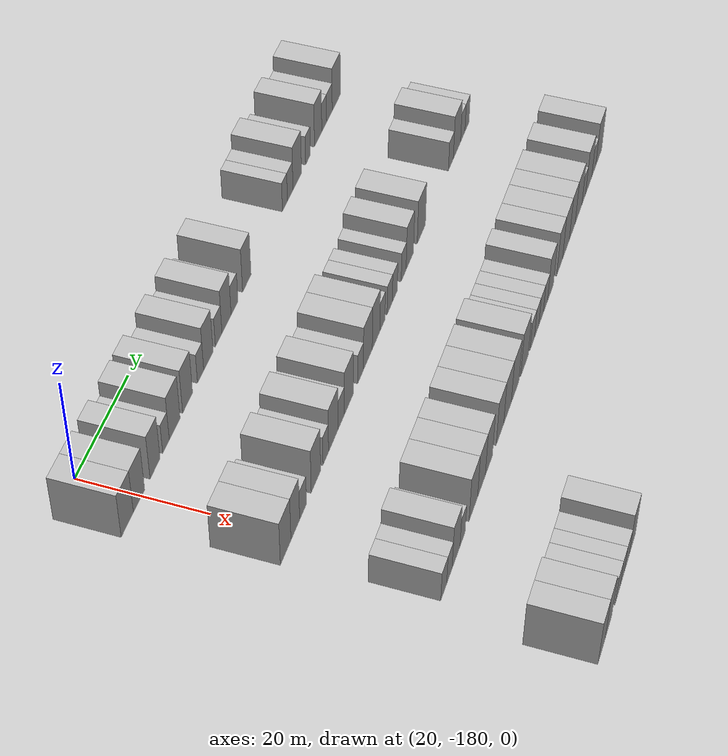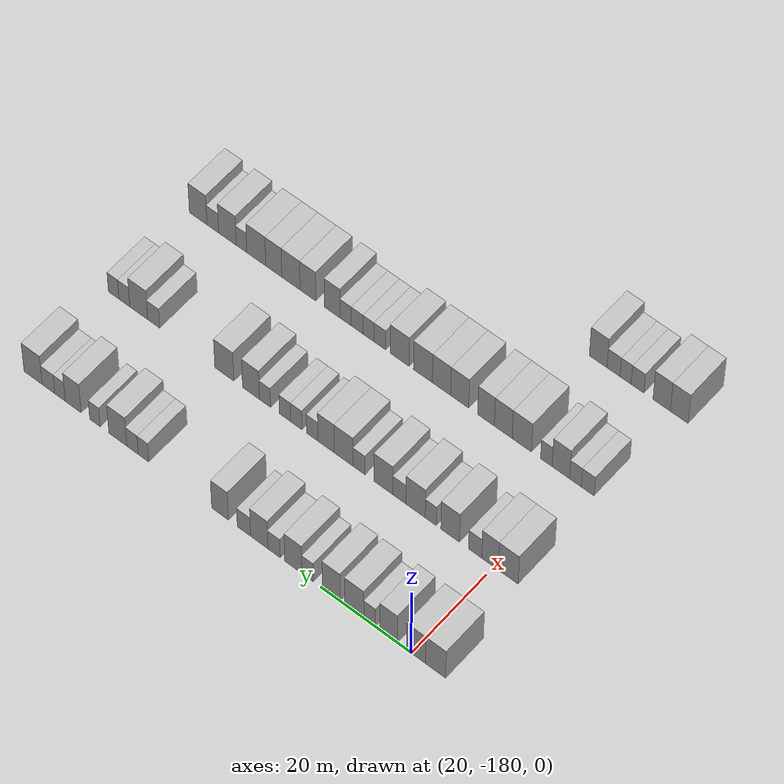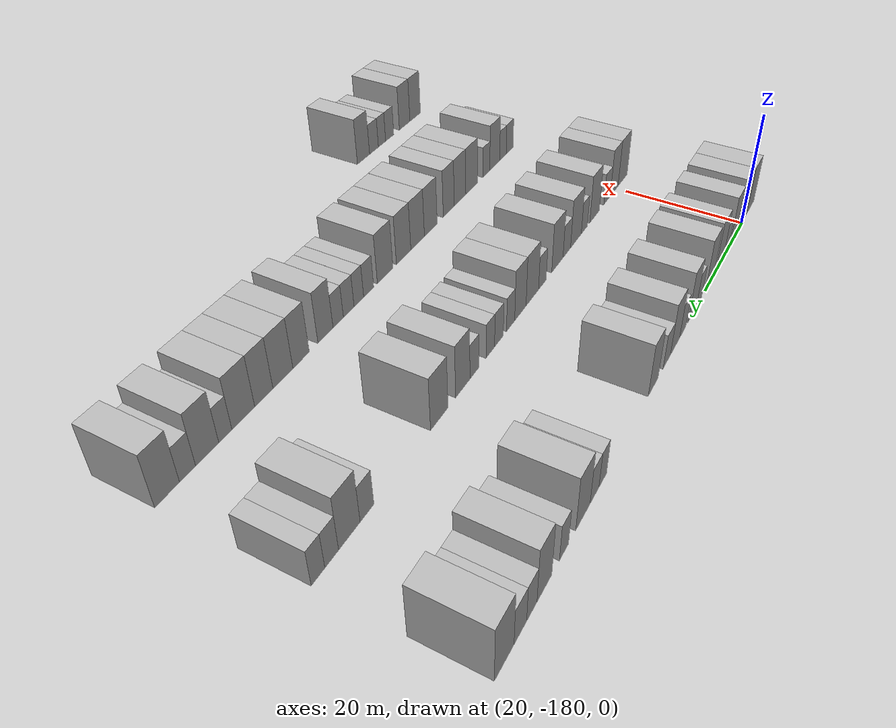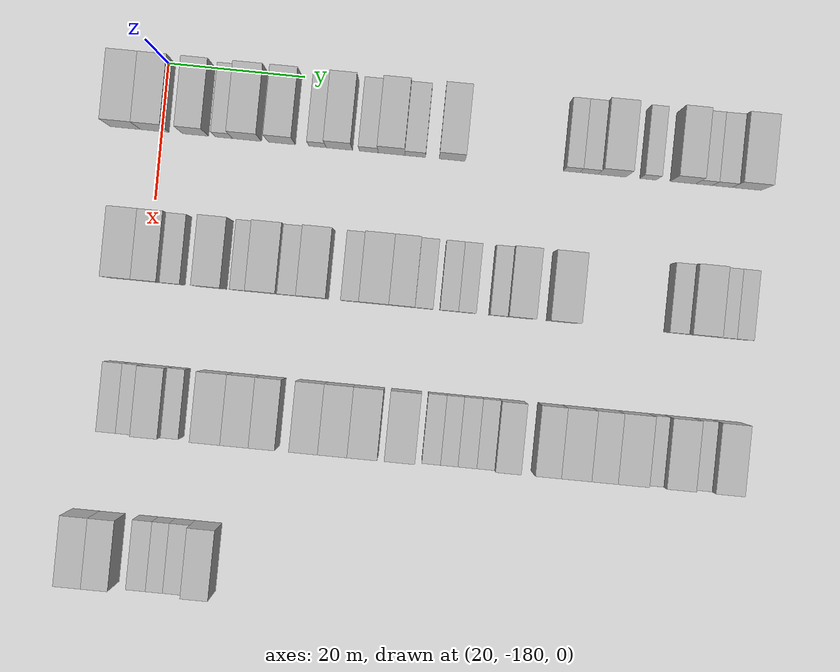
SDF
<sdf version="1.6">
 <world name="default">
  <model name="building_45">
   <static>1</static>
   <pose>25.0000 -185.2528 0 0.000000 0.000000 0.000000</pose>
   <link name="link">
    <pose>0 0 4.50 0 0 0</pose>
    <collision name="collision"><geometry><box><size>10.0000 4.4235 9.0000</size></box></geometry></collision>
    <visual name="visual">
     <cast_shadows>0</cast_shadows>
     <geometry><box><size>10.0000 4.4235 9.0000</size></box></geometry>
     <material>
      <script>
       <uri>model://HANNAS_wall/materials/scripts</uri>
       <uri>model://HANNAS_wall/materials/textures</uri>
       <name>vrc/HANNAS_wall</name>
      </script>
     </material>
    </visual>
   </link>
  </model>
  <model name="building_46">
   <static>1</static>
   <pose>25.0000 -180.9691 0 0.000000 0.000000 0.000000</pose>
   <link name="link">
    <pose>0 0 4.50 0 0 0</pose>
    <collision name="collision"><geometry><box><size>10.0000 4.1439 9.0000</size></box></geometry></collision>
    <visual name="visual">
     <cast_shadows>0</cast_shadows>
     <geometry><box><size>10.0000 4.1439 9.0000</size></box></geometry>
     <material>
      <script>
       <uri>model://HANNAS_wall/materials/scripts</uri>
       <uri>model://HANNAS_wall/materials/textures</uri>
       <name>vrc/HANNAS_wall</name>
      </script>
     </material>
    </visual>
   </link>
  </model>
  <model name="building_47">
   <static>1</static>
   <pose>25.0000 -174.9923 0 0.000000 0.000000 0.000000</pose>
   <link name="link">
    <pose>0 0 4.50 0 0 0</pose>
    <collision name="collision"><geometry><box><size>10.0000 3.8098 9.0000</size></box></geometry></collision>
    <visual name="visual">
     <cast_shadows>0</cast_shadows>
     <geometry><box><size>10.0000 3.8098 9.0000</size></box></geometry>
     <material>
      <script>
       <uri>model://HANNAS_wall/materials/scripts</uri>
       <uri>model://HANNAS_wall/materials/textures</uri>
       <name>vrc/HANNAS_wall</name>
      </script>
     </material>
    </visual>
   </link>
  </model>
  <model name="building_48">
   <static>1</static>
   <pose>25.0000 -170.8247 0 0.000000 0.000000 0.000000</pose>
   <link name="link">
    <pose>0 0 3.00 0 0 0</pose>
    <collision name="collision"><geometry><box><size>10.0000 2.5252 6.0000</size></box></geometry></collision>
    <visual name="visual">
     <cast_shadows>0</cast_shadows>
     <geometry><box><size>10.0000 2.5252 6.0000</size></box></geometry>
     <material>
      <script>
       <uri>model://HANNAS_wall/materials/scripts</uri>
       <uri>model://HANNAS_wall/materials/textures</uri>
       <name>vrc/HANNAS_wall</name>
      </script>
     </material>
    </visual>
   </link>
  </model>
  <model name="building_49">
   <static>1</static>
   <pose>25.0000 -167.4448 0 0.000000 0.000000 0.000000</pose>
   <link name="link">
    <pose>0 0 4.50 0 0 0</pose>
    <collision name="collision"><geometry><box><size>10.0000 4.2347 9.0000</size></box></geometry></collision>
    <visual name="visual">
     <cast_shadows>0</cast_shadows>
     <geometry><box><size>10.0000 4.2347 9.0000</size></box></geometry>
     <material>
      <script>
       <uri>model://HANNAS_wall/materials/scripts</uri>
       <uri>model://HANNAS_wall/materials/textures</uri>
       <name>vrc/HANNAS_wall</name>
      </script>
     </material>
    </visual>
   </link>
  </model>
  <model name="building_50">
   <static>1</static>
   <pose>25.0000 -162.3465 0 0.000000 0.000000 0.000000</pose>
   <link name="link">
    <pose>0 0 4.50 0 0 0</pose>
    <collision name="collision"><geometry><box><size>10.0000 3.9619 9.0000</size></box></geometry></collision>
    <visual name="visual">
     <cast_shadows>0</cast_shadows>
     <geometry><box><size>10.0000 3.9619 9.0000</size></box></geometry>
     <material>
      <script>
       <uri>model://HANNAS_wall/materials/scripts</uri>
       <uri>model://HANNAS_wall/materials/textures</uri>
       <name>vrc/HANNAS_wall</name>
      </script>
     </material>
    </visual>
   </link>
  </model>
  <model name="building_51">
   <static>1</static>
   <pose>25.0000 -157.0971 0 0.000000 0.000000 0.000000</pose>
   <link name="link">
    <pose>0 0 3.00 0 0 0</pose>
    <collision name="collision"><geometry><box><size>10.0000 2.5369 6.0000</size></box></geometry></collision>
    <visual name="visual">
     <cast_shadows>0</cast_shadows>
     <geometry><box><size>10.0000 2.5369 6.0000</size></box></geometry>
     <material>
      <script>
       <uri>model://HANNAS_wall/materials/scripts</uri>
       <uri>model://HANNAS_wall/materials/textures</uri>
       <name>vrc/HANNAS_wall</name>
      </script>
     </material>
    </visual>
   </link>
  </model>
  <model name="building_52">
   <static>1</static>
   <pose>25.0000 -153.9023 0 0.000000 0.000000 0.000000</pose>
   <link name="link">
    <pose>0 0 4.50 0 0 0</pose>
    <collision name="collision"><geometry><box><size>10.0000 3.8527 9.0000</size></box></geometry></collision>
    <visual name="visual">
     <cast_shadows>0</cast_shadows>
     <geometry><box><size>10.0000 3.8527 9.0000</size></box></geometry>
     <material>
      <script>
       <uri>model://HANNAS_wall/materials/scripts</uri>
       <uri>model://HANNAS_wall/materials/textures</uri>
       <name>vrc/HANNAS_wall</name>
      </script>
     </material>
    </visual>
   </link>
  </model>
  <model name="building_53">
   <static>1</static>
   <pose>25.0000 -149.5930 0 0.000000 0.000000 0.000000</pose>
   <link name="link">
    <pose>0 0 3.00 0 0 0</pose>
    <collision name="collision"><geometry><box><size>10.0000 2.7660 6.0000</size></box></geometry></collision>
    <visual name="visual">
     <cast_shadows>0</cast_shadows>
     <geometry><box><size>10.0000 2.7660 6.0000</size></box></geometry>
     <material>
      <script>
       <uri>model://HANNAS_wall/materials/scripts</uri>
       <uri>model://HANNAS_wall/materials/textures</uri>
       <name>vrc/HANNAS_wall</name>
      </script>
     </material>
    </visual>
   </link>
  </model>
  <model name="building_54">
   <static>1</static>
   <pose>25.0000 -146.2458 0 0.000000 0.000000 0.000000</pose>
   <link name="link">
    <pose>0 0 4.50 0 0 0</pose>
    <collision name="collision"><geometry><box><size>10.0000 3.9282 9.0000</size></box></geometry></collision>
    <visual name="visual">
     <cast_shadows>0</cast_shadows>
     <geometry><box><size>10.0000 3.9282 9.0000</size></box></geometry>
     <material>
      <script>
       <uri>model://HANNAS_wall/materials/scripts</uri>
       <uri>model://HANNAS_wall/materials/textures</uri>
       <name>vrc/HANNAS_wall</name>
      </script>
     </material>
    </visual>
   </link>
  </model>
  <model name="building_55">
   <static>1</static>
   <pose>25.0000 -142.7853 0 0.000000 0.000000 0.000000</pose>
   <link name="link">
    <pose>0 0 3.00 0 0 0</pose>
    <collision name="collision"><geometry><box><size>10.0000 2.9929 6.0000</size></box></geometry></collision>
    <visual name="visual">
     <cast_shadows>0</cast_shadows>
     <geometry><box><size>10.0000 2.9929 6.0000</size></box></geometry>
     <material>
      <script>
       <uri>model://HANNAS_wall/materials/scripts</uri>
       <uri>model://HANNAS_wall/materials/textures</uri>
       <name>vrc/HANNAS_wall</name>
      </script>
     </material>
    </visual>
   </link>
  </model>
  <model name="building_56">
   <static>1</static>
   <pose>25.0000 -137.4018 0 0.000000 0.000000 0.000000</pose>
   <link name="link">
    <pose>0 0 4.50 0 0 0</pose>
    <collision name="collision"><geometry><box><size>10.0000 3.7742 9.0000</size></box></geometry></collision>
    <visual name="visual">
     <cast_shadows>0</cast_shadows>
     <geometry><box><size>10.0000 3.7742 9.0000</size></box></geometry>
     <material>
      <script>
       <uri>model://HANNAS_wall/materials/scripts</uri>
       <uri>model://HANNAS_wall/materials/textures</uri>
       <name>vrc/HANNAS_wall</name>
      </script>
     </material>
    </visual>
   </link>
  </model>
  <model name="building_57">
   <static>1</static>
   <pose>25.0000 -119.8954 0 0.000000 0.000000 0.000000</pose>
   <link name="link">
    <pose>0 0 3.00 0 0 0</pose>
    <collision name="collision"><geometry><box><size>10.0000 2.4129 6.0000</size></box></geometry></collision>
    <visual name="visual">
     <cast_shadows>0</cast_shadows>
     <geometry><box><size>10.0000 2.4129 6.0000</size></box></geometry>
     <material>
      <script>
       <uri>model://HANNAS_wall/materials/scripts</uri>
       <uri>model://HANNAS_wall/materials/textures</uri>
       <name>vrc/HANNAS_wall</name>
      </script>
     </material>
    </visual>
   </link>
  </model>
  <model name="building_58">
   <static>1</static>
   <pose>25.0000 -117.3550 0 0.000000 0.000000 0.000000</pose>
   <link name="link">
    <pose>0 0 3.00 0 0 0</pose>
    <collision name="collision"><geometry><box><size>10.0000 2.6679 6.0000</size></box></geometry></collision>
    <visual name="visual">
     <cast_shadows>0</cast_shadows>
     <geometry><box><size>10.0000 2.6679 6.0000</size></box></geometry>
     <material>
      <script>
       <uri>model://HANNAS_wall/materials/scripts</uri>
       <uri>model://HANNAS_wall/materials/textures</uri>
       <name>vrc/HANNAS_wall</name>
      </script>
     </material>
    </visual>
   </link>
  </model>
  <model name="building_59">
   <static>1</static>
   <pose>25.0000 -113.9517 0 0.000000 0.000000 0.000000</pose>
   <link name="link">
    <pose>0 0 4.50 0 0 0</pose>
    <collision name="collision"><geometry><box><size>10.0000 4.1386 9.0000</size></box></geometry></collision>
    <visual name="visual">
     <cast_shadows>0</cast_shadows>
     <geometry><box><size>10.0000 4.1386 9.0000</size></box></geometry>
     <material>
      <script>
       <uri>model://HANNAS_wall/materials/scripts</uri>
       <uri>model://HANNAS_wall/materials/textures</uri>
       <name>vrc/HANNAS_wall</name>
      </script>
     </material>
    </visual>
   </link>
  </model>
  <model name="building_60">
   <static>1</static>
   <pose>25.0000 -108.6662 0 0.000000 0.000000 0.000000</pose>
   <link name="link">
    <pose>0 0 3.00 0 0 0</pose>
    <collision name="collision"><geometry><box><size>10.0000 2.4325 6.0000</size></box></geometry></collision>
    <visual name="visual">
     <cast_shadows>0</cast_shadows>
     <geometry><box><size>10.0000 2.4325 6.0000</size></box></geometry>
     <material>
      <script>
       <uri>model://HANNAS_wall/materials/scripts</uri>
       <uri>model://HANNAS_wall/materials/textures</uri>
       <name>vrc/HANNAS_wall</name>
      </script>
     </material>
    </visual>
   </link>
  </model>
  <model name="building_61">
   <static>1</static>
   <pose>25.0000 -103.5919 0 0.000000 0.000000 0.000000</pose>
   <link name="link">
    <pose>0 0 4.50 0 0 0</pose>
    <collision name="collision"><geometry><box><size>10.0000 3.7161 9.0000</size></box></geometry></collision>
    <visual name="visual">
     <cast_shadows>0</cast_shadows>
     <geometry><box><size>10.0000 3.7161 9.0000</size></box></geometry>
     <material>
      <script>
       <uri>model://HANNAS_wall/materials/scripts</uri>
       <uri>model://HANNAS_wall/materials/textures</uri>
       <name>vrc/HANNAS_wall</name>
      </script>
     </material>
    </visual>
   </link>
  </model>
  <model name="building_62">
   <static>1</static>
   <pose>25.0000 -100.4993 0 0.000000 0.000000 0.000000</pose>
   <link name="link">
    <pose>0 0 3.00 0 0 0</pose>
    <collision name="collision"><geometry><box><size>10.0000 2.4692 6.0000</size></box></geometry></collision>
    <visual name="visual">
     <cast_shadows>0</cast_shadows>
     <geometry><box><size>10.0000 2.4692 6.0000</size></box></geometry>
     <material>
      <script>
       <uri>model://HANNAS_wall/materials/scripts</uri>
       <uri>model://HANNAS_wall/materials/textures</uri>
       <name>vrc/HANNAS_wall</name>
      </script>
     </material>
    </visual>
   </link>
  </model>
  <model name="building_63">
   <static>1</static>
   <pose>25.0000 -97.8105 0 0.000000 0.000000 0.000000</pose>
   <link name="link">
    <pose>0 0 3.00 0 0 0</pose>
    <collision name="collision"><geometry><box><size>10.0000 2.9084 6.0000</size></box></geometry></collision>
    <visual name="visual">
     <cast_shadows>0</cast_shadows>
     <geometry><box><size>10.0000 2.9084 6.0000</size></box></geometry>
     <material>
      <script>
       <uri>model://HANNAS_wall/materials/scripts</uri>
       <uri>model://HANNAS_wall/materials/textures</uri>
       <name>vrc/HANNAS_wall</name>
      </script>
     </material>
    </visual>
   </link>
  </model>
  <model name="building_64">
   <static>1</static>
   <pose>25.0000 -94.2156 0 0.000000 0.000000 0.000000</pose>
   <link name="link">
    <pose>0 0 4.50 0 0 0</pose>
    <collision name="collision"><geometry><box><size>10.0000 4.2814 9.0000</size></box></geometry></collision>
    <visual name="visual">
     <cast_shadows>0</cast_shadows>
     <geometry><box><size>10.0000 4.2814 9.0000</size></box></geometry>
     <material>
      <script>
       <uri>model://HANNAS_wall/materials/scripts</uri>
       <uri>model://HANNAS_wall/materials/textures</uri>
       <name>vrc/HANNAS_wall</name>
      </script>
     </material>
    </visual>
   </link>
  </model>
  <model name="building_230">
   <static>1</static>
   <pose>47.0000 -183.0756 0 0.000000 0.000000 0.000000</pose>
   <link name="link">
    <pose>0 0 4.50 0 0 0</pose>
    <collision name="collision"><geometry><box><size>10.0000 4.3455 9.0000</size></box></geometry></collision>
    <visual name="visual">
     <cast_shadows>0</cast_shadows>
     <geometry><box><size>10.0000 4.3455 9.0000</size></box></geometry>
     <material>
      <script>
       <uri>model://HANNAS_wall/materials/scripts</uri>
       <uri>model://HANNAS_wall/materials/textures</uri>
       <name>vrc/HANNAS_wall</name>
      </script>
     </material>
    </visual>
   </link>
  </model>
  <model name="building_231">
   <static>1</static>
   <pose>47.0000 -179.0838 0 0.000000 0.000000 0.000000</pose>
   <link name="link">
    <pose>0 0 4.50 0 0 0</pose>
    <collision name="collision"><geometry><box><size>10.0000 3.6381 9.0000</size></box></geometry></collision>
    <visual name="visual">
     <cast_shadows>0</cast_shadows>
     <geometry><box><size>10.0000 3.6381 9.0000</size></box></geometry>
     <material>
      <script>
       <uri>model://HANNAS_wall/materials/scripts</uri>
       <uri>model://HANNAS_wall/materials/textures</uri>
       <name>vrc/HANNAS_wall</name>
      </script>
     </material>
    </visual>
   </link>
  </model>
  <model name="building_232">
   <static>1</static>
   <pose>47.0000 -175.8209 0 0.000000 0.000000 0.000000</pose>
   <link name="link">
    <pose>0 0 3.00 0 0 0</pose>
    <collision name="collision"><geometry><box><size>10.0000 2.8879 6.0000</size></box></geometry></collision>
    <visual name="visual">
     <cast_shadows>0</cast_shadows>
     <geometry><box><size>10.0000 2.8879 6.0000</size></box></geometry>
     <material>
      <script>
       <uri>model://HANNAS_wall/materials/scripts</uri>
       <uri>model://HANNAS_wall/materials/textures</uri>
       <name>vrc/HANNAS_wall</name>
      </script>
     </material>
    </visual>
   </link>
  </model>
  <model name="building_233">
   <static>1</static>
   <pose>47.0000 -170.3170 0 0.000000 0.000000 0.000000</pose>
   <link name="link">
    <pose>0 0 4.50 0 0 0</pose>
    <collision name="collision"><geometry><box><size>10.0000 4.1198 9.0000</size></box></geometry></collision>
    <visual name="visual">
     <cast_shadows>0</cast_shadows>
     <geometry><box><size>10.0000 4.1198 9.0000</size></box></geometry>
     <material>
      <script>
       <uri>model://HANNAS_wall/materials/scripts</uri>
       <uri>model://HANNAS_wall/materials/textures</uri>
       <name>vrc/HANNAS_wall</name>
      </script>
     </material>
    </visual>
   </link>
  </model>
  <model name="building_234">
   <static>1</static>
   <pose>47.0000 -166.0101 0 0.000000 0.000000 0.000000</pose>
   <link name="link">
    <pose>0 0 3.00 0 0 0</pose>
    <collision name="collision"><geometry><box><size>10.0000 2.4941 6.0000</size></box></geometry></collision>
    <visual name="visual">
     <cast_shadows>0</cast_shadows>
     <geometry><box><size>10.0000 2.4941 6.0000</size></box></geometry>
     <material>
      <script>
       <uri>model://HANNAS_wall/materials/scripts</uri>
       <uri>model://HANNAS_wall/materials/textures</uri>
       <name>vrc/HANNAS_wall</name>
      </script>
     </material>
    </visual>
   </link>
  </model>
  <model name="building_235">
   <static>1</static>
   <pose>47.0000 -162.6153 0 0.000000 0.000000 0.000000</pose>
   <link name="link">
    <pose>0 0 4.50 0 0 0</pose>
    <collision name="collision"><geometry><box><size>10.0000 4.2955 9.0000</size></box></geometry></collision>
    <visual name="visual">
     <cast_shadows>0</cast_shadows>
     <geometry><box><size>10.0000 4.2955 9.0000</size></box></geometry>
     <material>
      <script>
       <uri>model://HANNAS_wall/materials/scripts</uri>
       <uri>model://HANNAS_wall/materials/textures</uri>
       <name>vrc/HANNAS_wall</name>
      </script>
     </material>
    </visual>
   </link>
  </model>
  <model name="building_236">
   <static>1</static>
   <pose>47.0000 -159.0117 0 0.000000 0.000000 0.000000</pose>
   <link name="link">
    <pose>0 0 3.00 0 0 0</pose>
    <collision name="collision"><geometry><box><size>10.0000 2.9117 6.0000</size></box></geometry></collision>
    <visual name="visual">
     <cast_shadows>0</cast_shadows>
     <geometry><box><size>10.0000 2.9117 6.0000</size></box></geometry>
     <material>
      <script>
       <uri>model://HANNAS_wall/materials/scripts</uri>
       <uri>model://HANNAS_wall/materials/textures</uri>
       <name>vrc/HANNAS_wall</name>
      </script>
     </material>
    </visual>
   </link>
  </model>
  <model name="building_237">
   <static>1</static>
   <pose>47.0000 -155.4536 0 0.000000 0.000000 0.000000</pose>
   <link name="link">
    <pose>0 0 4.50 0 0 0</pose>
    <collision name="collision"><geometry><box><size>10.0000 4.2043 9.0000</size></box></geometry></collision>
    <visual name="visual">
     <cast_shadows>0</cast_shadows>
     <geometry><box><size>10.0000 4.2043 9.0000</size></box></geometry>
     <material>
      <script>
       <uri>model://HANNAS_wall/materials/scripts</uri>
       <uri>model://HANNAS_wall/materials/textures</uri>
       <name>vrc/HANNAS_wall</name>
      </script>
     </material>
    </visual>
   </link>
  </model>
  <model name="building_238">
   <static>1</static>
   <pose>47.0000 -150.0059 0 0.000000 0.000000 0.000000</pose>
   <link name="link">
    <pose>0 0 3.00 0 0 0</pose>
    <collision name="collision"><geometry><box><size>10.0000 2.6910 6.0000</size></box></geometry></collision>
    <visual name="visual">
     <cast_shadows>0</cast_shadows>
     <geometry><box><size>10.0000 2.6910 6.0000</size></box></geometry>
     <material>
      <script>
       <uri>model://HANNAS_wall/materials/scripts</uri>
       <uri>model://HANNAS_wall/materials/textures</uri>
       <name>vrc/HANNAS_wall</name>
      </script>
     </material>
    </visual>
   </link>
  </model>
  <model name="building_239">
   <static>1</static>
   <pose>47.0000 -146.5293 0 0.000000 0.000000 0.000000</pose>
   <link name="link">
    <pose>0 0 4.50 0 0 0</pose>
    <collision name="collision"><geometry><box><size>10.0000 4.2623 9.0000</size></box></geometry></collision>
    <visual name="visual">
     <cast_shadows>0</cast_shadows>
     <geometry><box><size>10.0000 4.2623 9.0000</size></box></geometry>
     <material>
      <script>
       <uri>model://HANNAS_wall/materials/scripts</uri>
       <uri>model://HANNAS_wall/materials/textures</uri>
       <name>vrc/HANNAS_wall</name>
      </script>
     </material>
    </visual>
   </link>
  </model>
  <model name="building_240">
   <static>1</static>
   <pose>47.0000 -142.5368 0 0.000000 0.000000 0.000000</pose>
   <link name="link">
    <pose>0 0 4.50 0 0 0</pose>
    <collision name="collision"><geometry><box><size>10.0000 3.7227 9.0000</size></box></geometry></collision>
    <visual name="visual">
     <cast_shadows>0</cast_shadows>
     <geometry><box><size>10.0000 3.7227 9.0000</size></box></geometry>
     <material>
      <script>
       <uri>model://HANNAS_wall/materials/scripts</uri>
       <uri>model://HANNAS_wall/materials/textures</uri>
       <name>vrc/HANNAS_wall</name>
      </script>
     </material>
    </visual>
   </link>
  </model>
  <model name="building_241">
   <static>1</static>
   <pose>47.0000 -139.3839 0 0.000000 0.000000 0.000000</pose>
   <link name="link">
    <pose>0 0 3.00 0 0 0</pose>
    <collision name="collision"><geometry><box><size>10.0000 2.5831 6.0000</size></box></geometry></collision>
    <visual name="visual">
     <cast_shadows>0</cast_shadows>
     <geometry><box><size>10.0000 2.5831 6.0000</size></box></geometry>
     <material>
      <script>
       <uri>model://HANNAS_wall/materials/scripts</uri>
       <uri>model://HANNAS_wall/materials/textures</uri>
       <name>vrc/HANNAS_wall</name>
      </script>
     </material>
    </visual>
   </link>
  </model>
  <model name="building_242">
   <static>1</static>
   <pose>47.0000 -135.7715 0 0.000000 0.000000 0.000000</pose>
   <link name="link">
    <pose>0 0 3.00 0 0 0</pose>
    <collision name="collision"><geometry><box><size>10.0000 2.6417 6.0000</size></box></geometry></collision>
    <visual name="visual">
     <cast_shadows>0</cast_shadows>
     <geometry><box><size>10.0000 2.6417 6.0000</size></box></geometry>
     <material>
      <script>
       <uri>model://HANNAS_wall/materials/scripts</uri>
       <uri>model://HANNAS_wall/materials/textures</uri>
       <name>vrc/HANNAS_wall</name>
      </script>
     </material>
    </visual>
   </link>
  </model>
  <model name="building_243">
   <static>1</static>
   <pose>47.0000 -133.1820 0 0.000000 0.000000 0.000000</pose>
   <link name="link">
    <pose>0 0 3.00 0 0 0</pose>
    <collision name="collision"><geometry><box><size>10.0000 2.5373 6.0000</size></box></geometry></collision>
    <visual name="visual">
     <cast_shadows>0</cast_shadows>
     <geometry><box><size>10.0000 2.5373 6.0000</size></box></geometry>
     <material>
      <script>
       <uri>model://HANNAS_wall/materials/scripts</uri>
       <uri>model://HANNAS_wall/materials/textures</uri>
       <name>vrc/HANNAS_wall</name>
      </script>
     </material>
    </visual>
   </link>
  </model>
  <model name="building_244">
   <static>1</static>
   <pose>47.0000 -128.6368 0 0.000000 0.000000 0.000000</pose>
   <link name="link">
    <pose>0 0 3.00 0 0 0</pose>
    <collision name="collision"><geometry><box><size>10.0000 2.5530 6.0000</size></box></geometry></collision>
    <visual name="visual">
     <cast_shadows>0</cast_shadows>
     <geometry><box><size>10.0000 2.5530 6.0000</size></box></geometry>
     <material>
      <script>
       <uri>model://HANNAS_wall/materials/scripts</uri>
       <uri>model://HANNAS_wall/materials/textures</uri>
       <name>vrc/HANNAS_wall</name>
      </script>
     </material>
    </visual>
   </link>
  </model>
  <model name="building_245">
   <static>1</static>
   <pose>47.0000 -125.4148 0 0.000000 0.000000 0.000000</pose>
   <link name="link">
    <pose>0 0 4.50 0 0 0</pose>
    <collision name="collision"><geometry><box><size>10.0000 3.8911 9.0000</size></box></geometry></collision>
    <visual name="visual">
     <cast_shadows>0</cast_shadows>
     <geometry><box><size>10.0000 3.8911 9.0000</size></box></geometry>
     <material>
      <script>
       <uri>model://HANNAS_wall/materials/scripts</uri>
       <uri>model://HANNAS_wall/materials/textures</uri>
       <name>vrc/HANNAS_wall</name>
      </script>
     </material>
    </visual>
   </link>
  </model>
  <model name="building_246">
   <static>1</static>
   <pose>47.0000 -119.2658 0 0.000000 0.000000 0.000000</pose>
   <link name="link">
    <pose>0 0 4.50 0 0 0</pose>
    <collision name="collision"><geometry><box><size>10.0000 4.4068 9.0000</size></box></geometry></collision>
    <visual name="visual">
     <cast_shadows>0</cast_shadows>
     <geometry><box><size>10.0000 4.4068 9.0000</size></box></geometry>
     <material>
      <script>
       <uri>model://HANNAS_wall/materials/scripts</uri>
       <uri>model://HANNAS_wall/materials/textures</uri>
       <name>vrc/HANNAS_wall</name>
      </script>
     </material>
    </visual>
   </link>
  </model>
  <model name="building_247">
   <static>1</static>
   <pose>47.0000 -102.8188 0 0.000000 0.000000 0.000000</pose>
   <link name="link">
    <pose>0 0 3.00 0 0 0</pose>
    <collision name="collision"><geometry><box><size>10.0000 2.8291 6.0000</size></box></geometry></collision>
    <visual name="visual">
     <cast_shadows>0</cast_shadows>
     <geometry><box><size>10.0000 2.8291 6.0000</size></box></geometry>
     <material>
      <script>
       <uri>model://HANNAS_wall/materials/scripts</uri>
       <uri>model://HANNAS_wall/materials/textures</uri>
       <name>vrc/HANNAS_wall</name>
      </script>
     </material>
    </visual>
   </link>
  </model>
  <model name="building_248">
   <static>1</static>
   <pose>47.0000 -99.2998 0 0.000000 0.000000 0.000000</pose>
   <link name="link">
    <pose>0 0 4.50 0 0 0</pose>
    <collision name="collision"><geometry><box><size>10.0000 4.2090 9.0000</size></box></geometry></collision>
    <visual name="visual">
     <cast_shadows>0</cast_shadows>
     <geometry><box><size>10.0000 4.2090 9.0000</size></box></geometry>
     <material>
      <script>
       <uri>model://HANNAS_wall/materials/scripts</uri>
       <uri>model://HANNAS_wall/materials/textures</uri>
       <name>vrc/HANNAS_wall</name>
      </script>
     </material>
    </visual>
   </link>
  </model>
  <model name="building_249">
   <static>1</static>
   <pose>47.0000 -95.9122 0 0.000000 0.000000 0.000000</pose>
   <link name="link">
    <pose>0 0 3.00 0 0 0</pose>
    <collision name="collision"><geometry><box><size>10.0000 2.5662 6.0000</size></box></geometry></collision>
    <visual name="visual">
     <cast_shadows>0</cast_shadows>
     <geometry><box><size>10.0000 2.5662 6.0000</size></box></geometry>
     <material>
      <script>
       <uri>model://HANNAS_wall/materials/scripts</uri>
       <uri>model://HANNAS_wall/materials/textures</uri>
       <name>vrc/HANNAS_wall</name>
      </script>
     </material>
    </visual>
   </link>
  </model>
  <model name="building_250">
   <static>1</static>
   <pose>47.0000 -93.3947 0 0.000000 0.000000 0.000000</pose>
   <link name="link">
    <pose>0 0 3.00 0 0 0</pose>
    <collision name="collision"><geometry><box><size>10.0000 2.4687 6.0000</size></box></geometry></collision>
    <visual name="visual">
     <cast_shadows>0</cast_shadows>
     <geometry><box><size>10.0000 2.4687 6.0000</size></box></geometry>
     <material>
      <script>
       <uri>model://HANNAS_wall/materials/scripts</uri>
       <uri>model://HANNAS_wall/materials/textures</uri>
       <name>vrc/HANNAS_wall</name>
      </script>
     </material>
    </visual>
   </link>
  </model>
  <model name="building_416">
   <static>1</static>
   <pose>69.0000 -182.7843 0 0.000000 0.000000 0.000000</pose>
   <link name="link">
    <pose>0 0 3.00 0 0 0</pose>
    <collision name="collision"><geometry><box><size>10.0000 2.8218 6.0000</size></box></geometry></collision>
    <visual name="visual">
     <cast_shadows>0</cast_shadows>
     <geometry><box><size>10.0000 2.8218 6.0000</size></box></geometry>
     <material>
      <script>
       <uri>model://HANNAS_wall/materials/scripts</uri>
       <uri>model://HANNAS_wall/materials/textures</uri>
       <name>vrc/HANNAS_wall</name>
      </script>
     </material>
    </visual>
   </link>
  </model>
  <model name="building_417">
   <static>1</static>
   <pose>69.0000 -180.0860 0 0.000000 0.000000 0.000000</pose>
   <link name="link">
    <pose>0 0 3.00 0 0 0</pose>
    <collision name="collision"><geometry><box><size>10.0000 2.5749 6.0000</size></box></geometry></collision>
    <visual name="visual">
     <cast_shadows>0</cast_shadows>
     <geometry><box><size>10.0000 2.5749 6.0000</size></box></geometry>
     <material>
      <script>
       <uri>model://HANNAS_wall/materials/scripts</uri>
       <uri>model://HANNAS_wall/materials/textures</uri>
       <name>vrc/HANNAS_wall</name>
      </script>
     </material>
    </visual>
   </link>
  </model>
  <model name="building_418">
   <static>1</static>
   <pose>69.0000 -176.8755 0 0.000000 0.000000 0.000000</pose>
   <link name="link">
    <pose>0 0 4.50 0 0 0</pose>
    <collision name="collision"><geometry><box><size>10.0000 3.8462 9.0000</size></box></geometry></collision>
    <visual name="visual">
     <cast_shadows>0</cast_shadows>
     <geometry><box><size>10.0000 3.8462 9.0000</size></box></geometry>
     <material>
      <script>
       <uri>model://HANNAS_wall/materials/scripts</uri>
       <uri>model://HANNAS_wall/materials/textures</uri>
       <name>vrc/HANNAS_wall</name>
      </script>
     </material>
    </visual>
   </link>
  </model>
  <model name="building_419">
   <static>1</static>
   <pose>69.0000 -173.6781 0 0.000000 0.000000 0.000000</pose>
   <link name="link">
    <pose>0 0 3.00 0 0 0</pose>
    <collision name="collision"><geometry><box><size>10.0000 2.5486 6.0000</size></box></geometry></collision>
    <visual name="visual">
     <cast_shadows>0</cast_shadows>
     <geometry><box><size>10.0000 2.5486 6.0000</size></box></geometry>
     <material>
      <script>
       <uri>model://HANNAS_wall/materials/scripts</uri>
       <uri>model://HANNAS_wall/materials/textures</uri>
       <name>vrc/HANNAS_wall</name>
      </script>
     </material>
    </visual>
   </link>
  </model>
  <model name="building_420">
   <static>1</static>
   <pose>69.0000 -168.2470 0 0.000000 0.000000 0.000000</pose>
   <link name="link">
    <pose>0 0 4.50 0 0 0</pose>
    <collision name="collision"><geometry><box><size>10.0000 4.3137 9.0000</size></box></geometry></collision>
    <visual name="visual">
     <cast_shadows>0</cast_shadows>
     <geometry><box><size>10.0000 4.3137 9.0000</size></box></geometry>
     <material>
      <script>
       <uri>model://HANNAS_wall/materials/scripts</uri>
       <uri>model://HANNAS_wall/materials/textures</uri>
       <name>vrc/HANNAS_wall</name>
      </script>
     </material>
    </visual>
   </link>
  </model>
  <model name="building_421">
   <static>1</static>
   <pose>69.0000 -164.0893 0 0.000000 0.000000 0.000000</pose>
   <link name="link">
    <pose>0 0 4.50 0 0 0</pose>
    <collision name="collision"><geometry><box><size>10.0000 4.0017 9.0000</size></box></geometry></collision>
    <visual name="visual">
     <cast_shadows>0</cast_shadows>
     <geometry><box><size>10.0000 4.0017 9.0000</size></box></geometry>
     <material>
      <script>
       <uri>model://HANNAS_wall/materials/scripts</uri>
       <uri>model://HANNAS_wall/materials/textures</uri>
       <name>vrc/HANNAS_wall</name>
      </script>
     </material>
    </visual>
   </link>
  </model>
  <model name="building_422">
   <static>1</static>
   <pose>69.0000 -160.2307 0 0.000000 0.000000 0.000000</pose>
   <link name="link">
    <pose>0 0 4.50 0 0 0</pose>
    <collision name="collision"><geometry><box><size>10.0000 3.7155 9.0000</size></box></geometry></collision>
    <visual name="visual">
     <cast_shadows>0</cast_shadows>
     <geometry><box><size>10.0000 3.7155 9.0000</size></box></geometry>
     <material>
      <script>
       <uri>model://HANNAS_wall/materials/scripts</uri>
       <uri>model://HANNAS_wall/materials/textures</uri>
       <name>vrc/HANNAS_wall</name>
      </script>
     </material>
    </visual>
   </link>
  </model>
  <model name="building_423">
   <static>1</static>
   <pose>69.0000 -154.3421 0 0.000000 0.000000 0.000000</pose>
   <link name="link">
    <pose>0 0 4.50 0 0 0</pose>
    <collision name="collision"><geometry><box><size>10.0000 4.0617 9.0000</size></box></geometry></collision>
    <visual name="visual">
     <cast_shadows>0</cast_shadows>
     <geometry><box><size>10.0000 4.0617 9.0000</size></box></geometry>
     <material>
      <script>
       <uri>model://HANNAS_wall/materials/scripts</uri>
       <uri>model://HANNAS_wall/materials/textures</uri>
       <name>vrc/HANNAS_wall</name>
      </script>
     </material>
    </visual>
   </link>
  </model>
  <model name="building_424">
   <static>1</static>
   <pose>69.0000 -150.2341 0 0.000000 0.000000 0.000000</pose>
   <link name="link">
    <pose>0 0 4.50 0 0 0</pose>
    <collision name="collision"><geometry><box><size>10.0000 4.1542 9.0000</size></box></geometry></collision>
    <visual name="visual">
     <cast_shadows>0</cast_shadows>
     <geometry><box><size>10.0000 4.1542 9.0000</size></box></geometry>
     <material>
      <script>
       <uri>model://HANNAS_wall/materials/scripts</uri>
       <uri>model://HANNAS_wall/materials/textures</uri>
       <name>vrc/HANNAS_wall</name>
      </script>
     </material>
    </visual>
   </link>
  </model>
  <model name="building_425">
   <static>1</static>
   <pose>69.0000 -146.0257 0 0.000000 0.000000 0.000000</pose>
   <link name="link">
    <pose>0 0 4.50 0 0 0</pose>
    <collision name="collision"><geometry><box><size>10.0000 4.2628 9.0000</size></box></geometry></collision>
    <visual name="visual">
     <cast_shadows>0</cast_shadows>
     <geometry><box><size>10.0000 4.2628 9.0000</size></box></geometry>
     <material>
      <script>
       <uri>model://HANNAS_wall/materials/scripts</uri>
       <uri>model://HANNAS_wall/materials/textures</uri>
       <name>vrc/HANNAS_wall</name>
      </script>
     </material>
    </visual>
   </link>
  </model>
  <model name="building_426">
   <static>1</static>
   <pose>69.0000 -140.7216 0 0.000000 0.000000 0.000000</pose>
   <link name="link">
    <pose>0 0 4.50 0 0 0</pose>
    <collision name="collision"><geometry><box><size>10.0000 4.3453 9.0000</size></box></geometry></collision>
    <visual name="visual">
     <cast_shadows>0</cast_shadows>
     <geometry><box><size>10.0000 4.3453 9.0000</size></box></geometry>
     <material>
      <script>
       <uri>model://HANNAS_wall/materials/scripts</uri>
       <uri>model://HANNAS_wall/materials/textures</uri>
       <name>vrc/HANNAS_wall</name>
      </script>
     </material>
    </visual>
   </link>
  </model>
  <model name="building_427">
   <static>1</static>
   <pose>69.0000 -136.2181 0 0.000000 0.000000 0.000000</pose>
   <link name="link">
    <pose>0 0 3.00 0 0 0</pose>
    <collision name="collision"><geometry><box><size>10.0000 2.6616 6.0000</size></box></geometry></collision>
    <visual name="visual">
     <cast_shadows>0</cast_shadows>
     <geometry><box><size>10.0000 2.6616 6.0000</size></box></geometry>
     <material>
      <script>
       <uri>model://HANNAS_wall/materials/scripts</uri>
       <uri>model://HANNAS_wall/materials/textures</uri>
       <name>vrc/HANNAS_wall</name>
      </script>
     </material>
    </visual>
   </link>
  </model>
  <model name="building_428">
   <static>1</static>
   <pose>69.0000 -133.6395 0 0.000000 0.000000 0.000000</pose>
   <link name="link">
    <pose>0 0 3.00 0 0 0</pose>
    <collision name="collision"><geometry><box><size>10.0000 2.4957 6.0000</size></box></geometry></collision>
    <visual name="visual">
     <cast_shadows>0</cast_shadows>
     <geometry><box><size>10.0000 2.4957 6.0000</size></box></geometry>
     <material>
      <script>
       <uri>model://HANNAS_wall/materials/scripts</uri>
       <uri>model://HANNAS_wall/materials/textures</uri>
       <name>vrc/HANNAS_wall</name>
      </script>
     </material>
    </visual>
   </link>
  </model>
  <model name="building_429">
   <static>1</static>
   <pose>69.0000 -131.0428 0 0.000000 0.000000 0.000000</pose>
   <link name="link">
    <pose>0 0 3.00 0 0 0</pose>
    <collision name="collision"><geometry><box><size>10.0000 2.6975 6.0000</size></box></geometry></collision>
    <visual name="visual">
     <cast_shadows>0</cast_shadows>
     <geometry><box><size>10.0000 2.6975 6.0000</size></box></geometry>
     <material>
      <script>
       <uri>model://HANNAS_wall/materials/scripts</uri>
       <uri>model://HANNAS_wall/materials/textures</uri>
       <name>vrc/HANNAS_wall</name>
      </script>
     </material>
    </visual>
   </link>
  </model>
  <model name="building_430">
   <static>1</static>
   <pose>69.0000 -128.4170 0 0.000000 0.000000 0.000000</pose>
   <link name="link">
    <pose>0 0 3.00 0 0 0</pose>
    <collision name="collision"><geometry><box><size>10.0000 2.5541 6.0000</size></box></geometry></collision>
    <visual name="visual">
     <cast_shadows>0</cast_shadows>
     <geometry><box><size>10.0000 2.5541 6.0000</size></box></geometry>
     <material>
      <script>
       <uri>model://HANNAS_wall/materials/scripts</uri>
       <uri>model://HANNAS_wall/materials/textures</uri>
       <name>vrc/HANNAS_wall</name>
      </script>
     </material>
    </visual>
   </link>
  </model>
  <model name="building_431">
   <static>1</static>
   <pose>69.0000 -125.3344 0 0.000000 0.000000 0.000000</pose>
   <link name="link">
    <pose>0 0 4.50 0 0 0</pose>
    <collision name="collision"><geometry><box><size>10.0000 3.6111 9.0000</size></box></geometry></collision>
    <visual name="visual">
     <cast_shadows>0</cast_shadows>
     <geometry><box><size>10.0000 3.6111 9.0000</size></box></geometry>
     <material>
      <script>
       <uri>model://HANNAS_wall/materials/scripts</uri>
       <uri>model://HANNAS_wall/materials/textures</uri>
       <name>vrc/HANNAS_wall</name>
      </script>
     </material>
    </visual>
   </link>
  </model>
  <model name="building_432">
   <static>1</static>
   <pose>69.0000 -119.6957 0 0.000000 0.000000 0.000000</pose>
   <link name="link">
    <pose>0 0 4.50 0 0 0</pose>
    <collision name="collision"><geometry><box><size>10.0000 3.6663 9.0000</size></box></geometry></collision>
    <visual name="visual">
     <cast_shadows>0</cast_shadows>
     <geometry><box><size>10.0000 3.6663 9.0000</size></box></geometry>
     <material>
      <script>
       <uri>model://HANNAS_wall/materials/scripts</uri>
       <uri>model://HANNAS_wall/materials/textures</uri>
       <name>vrc/HANNAS_wall</name>
      </script>
     </material>
    </visual>
   </link>
  </model>
  <model name="building_433">
   <static>1</static>
   <pose>69.0000 -115.7240 0 0.000000 0.000000 0.000000</pose>
   <link name="link">
    <pose>0 0 4.50 0 0 0</pose>
    <collision name="collision"><geometry><box><size>10.0000 4.2770 9.0000</size></box></geometry></collision>
    <visual name="visual">
     <cast_shadows>0</cast_shadows>
     <geometry><box><size>10.0000 4.2770 9.0000</size></box></geometry>
     <material>
      <script>
       <uri>model://HANNAS_wall/materials/scripts</uri>
       <uri>model://HANNAS_wall/materials/textures</uri>
       <name>vrc/HANNAS_wall</name>
      </script>
     </material>
    </visual>
   </link>
  </model>
  <model name="building_434">
   <static>1</static>
   <pose>69.0000 -111.7227 0 0.000000 0.000000 0.000000</pose>
   <link name="link">
    <pose>0 0 4.50 0 0 0</pose>
    <collision name="collision"><geometry><box><size>10.0000 3.7258 9.0000</size></box></geometry></collision>
    <visual name="visual">
     <cast_shadows>0</cast_shadows>
     <geometry><box><size>10.0000 3.7258 9.0000</size></box></geometry>
     <material>
      <script>
       <uri>model://HANNAS_wall/materials/scripts</uri>
       <uri>model://HANNAS_wall/materials/textures</uri>
       <name>vrc/HANNAS_wall</name>
      </script>
     </material>
    </visual>
   </link>
  </model>
  <model name="building_435">
   <static>1</static>
   <pose>69.0000 -107.6377 0 0.000000 0.000000 0.000000</pose>
   <link name="link">
    <pose>0 0 4.50 0 0 0</pose>
    <collision name="collision"><geometry><box><size>10.0000 4.4442 9.0000</size></box></geometry></collision>
    <visual name="visual">
     <cast_shadows>0</cast_shadows>
     <geometry><box><size>10.0000 4.4442 9.0000</size></box></geometry>
     <material>
      <script>
       <uri>model://HANNAS_wall/materials/scripts</uri>
       <uri>model://HANNAS_wall/materials/textures</uri>
       <name>vrc/HANNAS_wall</name>
      </script>
     </material>
    </visual>
   </link>
  </model>
  <model name="building_436">
   <static>1</static>
   <pose>69.0000 -104.1882 0 0.000000 0.000000 0.000000</pose>
   <link name="link">
    <pose>0 0 3.00 0 0 0</pose>
    <collision name="collision"><geometry><box><size>10.0000 2.4548 6.0000</size></box></geometry></collision>
    <visual name="visual">
     <cast_shadows>0</cast_shadows>
     <geometry><box><size>10.0000 2.4548 6.0000</size></box></geometry>
     <material>
      <script>
       <uri>model://HANNAS_wall/materials/scripts</uri>
       <uri>model://HANNAS_wall/materials/textures</uri>
       <name>vrc/HANNAS_wall</name>
      </script>
     </material>
    </visual>
   </link>
  </model>
  <model name="building_437">
   <static>1</static>
   <pose>69.0000 -100.8838 0 0.000000 0.000000 0.000000</pose>
   <link name="link">
    <pose>0 0 4.50 0 0 0</pose>
    <collision name="collision"><geometry><box><size>10.0000 4.1538 9.0000</size></box></geometry></collision>
    <visual name="visual">
     <cast_shadows>0</cast_shadows>
     <geometry><box><size>10.0000 4.1538 9.0000</size></box></geometry>
     <material>
      <script>
       <uri>model://HANNAS_wall/materials/scripts</uri>
       <uri>model://HANNAS_wall/materials/textures</uri>
       <name>vrc/HANNAS_wall</name>
      </script>
     </material>
    </visual>
   </link>
  </model>
  <model name="building_438">
   <static>1</static>
   <pose>69.0000 -97.4254 0 0.000000 0.000000 0.000000</pose>
   <link name="link">
    <pose>0 0 3.00 0 0 0</pose>
    <collision name="collision"><geometry><box><size>10.0000 2.7632 6.0000</size></box></geometry></collision>
    <visual name="visual">
     <cast_shadows>0</cast_shadows>
     <geometry><box><size>10.0000 2.7632 6.0000</size></box></geometry>
     <material>
      <script>
       <uri>model://HANNAS_wall/materials/scripts</uri>
       <uri>model://HANNAS_wall/materials/textures</uri>
       <name>vrc/HANNAS_wall</name>
      </script>
     </material>
    </visual>
   </link>
  </model>
  <model name="building_439">
   <static>1</static>
   <pose>69.0000 -93.9773 0 0.000000 0.000000 0.000000</pose>
   <link name="link">
    <pose>0 0 4.50 0 0 0</pose>
    <collision name="collision"><geometry><box><size>10.0000 4.1330 9.0000</size></box></geometry></collision>
    <visual name="visual">
     <cast_shadows>0</cast_shadows>
     <geometry><box><size>10.0000 4.1330 9.0000</size></box></geometry>
     <material>
      <script>
       <uri>model://HANNAS_wall/materials/scripts</uri>
       <uri>model://HANNAS_wall/materials/textures</uri>
       <name>vrc/HANNAS_wall</name>
      </script>
     </material>
    </visual>
   </link>
  </model>
  <model name="building_611">
   <static>1</static>
   <pose>91.0000 -185.5536 0 0.000000 0.000000 0.000000</pose>
   <link name="link">
    <pose>0 0 4.50 0 0 0</pose>
    <collision name="collision"><geometry><box><size>10.0000 3.9236 9.0000</size></box></geometry></collision>
    <visual name="visual">
     <cast_shadows>0</cast_shadows>
     <geometry><box><size>10.0000 3.9236 9.0000</size></box></geometry>
     <material>
      <script>
       <uri>model://HANNAS_wall/materials/scripts</uri>
       <uri>model://HANNAS_wall/materials/textures</uri>
       <name>vrc/HANNAS_wall</name>
      </script>
     </material>
    </visual>
   </link>
  </model>
  <model name="building_612">
   <static>1</static>
   <pose>91.0000 -181.6814 0 0.000000 0.000000 0.000000</pose>
   <link name="link">
    <pose>0 0 4.50 0 0 0</pose>
    <collision name="collision"><geometry><box><size>10.0000 3.8207 9.0000</size></box></geometry></collision>
    <visual name="visual">
     <cast_shadows>0</cast_shadows>
     <geometry><box><size>10.0000 3.8207 9.0000</size></box></geometry>
     <material>
      <script>
       <uri>model://HANNAS_wall/materials/scripts</uri>
       <uri>model://HANNAS_wall/materials/textures</uri>
       <name>vrc/HANNAS_wall</name>
      </script>
     </material>
    </visual>
   </link>
  </model>
  <model name="building_613">
   <static>1</static>
   <pose>91.0000 -176.3613 0 0.000000 0.000000 0.000000</pose>
   <link name="link">
    <pose>0 0 3.00 0 0 0</pose>
    <collision name="collision"><geometry><box><size>10.0000 2.8195 6.0000</size></box></geometry></collision>
    <visual name="visual">
     <cast_shadows>0</cast_shadows>
     <geometry><box><size>10.0000 2.8195 6.0000</size></box></geometry>
     <material>
      <script>
       <uri>model://HANNAS_wall/materials/scripts</uri>
       <uri>model://HANNAS_wall/materials/textures</uri>
       <name>vrc/HANNAS_wall</name>
      </script>
     </material>
    </visual>
   </link>
  </model>
  <model name="building_614">
   <static>1</static>
   <pose>91.0000 -173.7201 0 0.000000 0.000000 0.000000</pose>
   <link name="link">
    <pose>0 0 3.00 0 0 0</pose>
    <collision name="collision"><geometry><box><size>10.0000 2.4630 6.0000</size></box></geometry></collision>
    <visual name="visual">
     <cast_shadows>0</cast_shadows>
     <geometry><box><size>10.0000 2.4630 6.0000</size></box></geometry>
     <material>
      <script>
       <uri>model://HANNAS_wall/materials/scripts</uri>
       <uri>model://HANNAS_wall/materials/textures</uri>
       <name>vrc/HANNAS_wall</name>
      </script>
     </material>
    </visual>
   </link>
  </model>
  <model name="building_615">
   <static>1</static>
   <pose>91.0000 -171.0262 0 0.000000 0.000000 0.000000</pose>
   <link name="link">
    <pose>0 0 3.00 0 0 0</pose>
    <collision name="collision"><geometry><box><size>10.0000 2.9247 6.0000</size></box></geometry></collision>
    <visual name="visual">
     <cast_shadows>0</cast_shadows>
     <geometry><box><size>10.0000 2.9247 6.0000</size></box></geometry>
     <material>
      <script>
       <uri>model://HANNAS_wall/materials/scripts</uri>
       <uri>model://HANNAS_wall/materials/textures</uri>
       <name>vrc/HANNAS_wall</name>
      </script>
     </material>
    </visual>
   </link>
  </model>
  <model name="building_616">
   <static>1</static>
   <pose>91.0000 -167.5954 0 0.000000 0.000000 0.000000</pose>
   <link name="link">
    <pose>0 0 4.50 0 0 0</pose>
    <collision name="collision"><geometry><box><size>10.0000 3.9371 9.0000</size></box></geometry></collision>
    <visual name="visual">
     <cast_shadows>0</cast_shadows>
     <geometry><box><size>10.0000 3.9371 9.0000</size></box></geometry>
     <material>
      <script>
       <uri>model://HANNAS_wall/materials/scripts</uri>
       <uri>model://HANNAS_wall/materials/textures</uri>
       <name>vrc/HANNAS_wall</name>
      </script>
     </material>
    </visual>
   </link>
  </model>
 </world>
</sdf>
